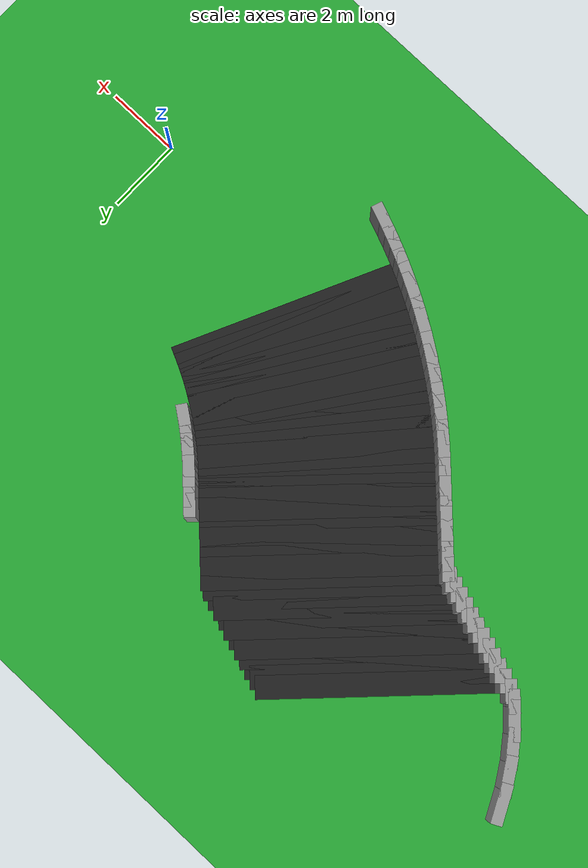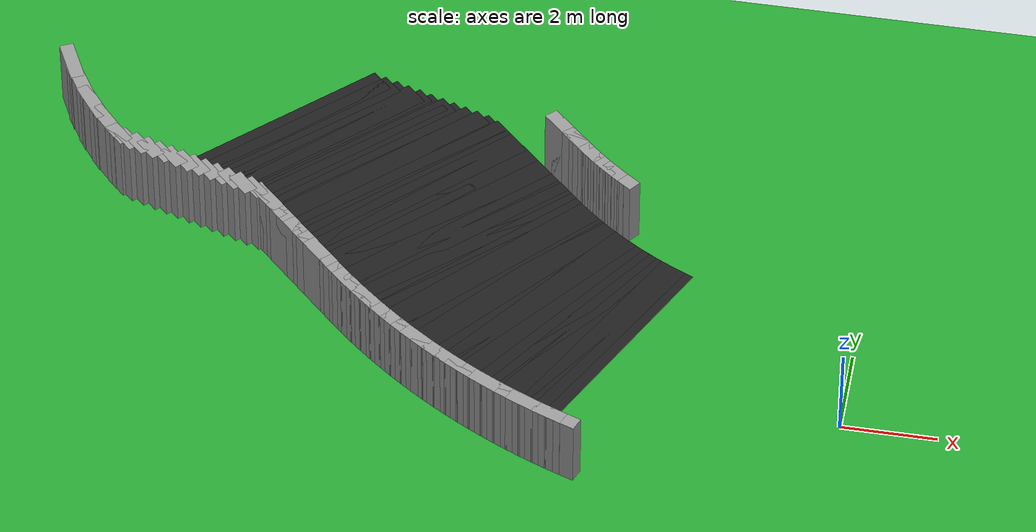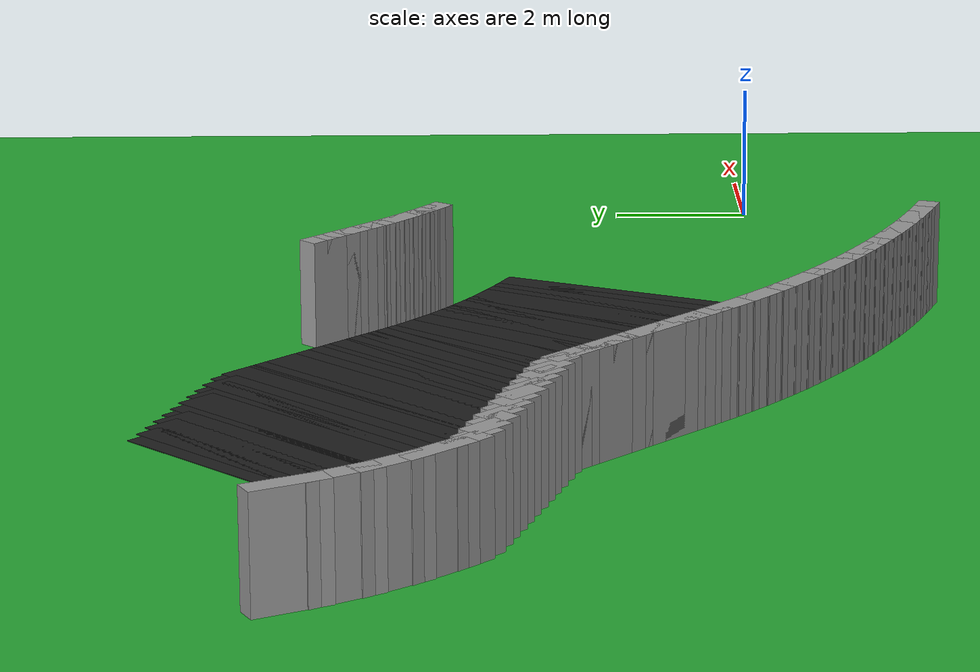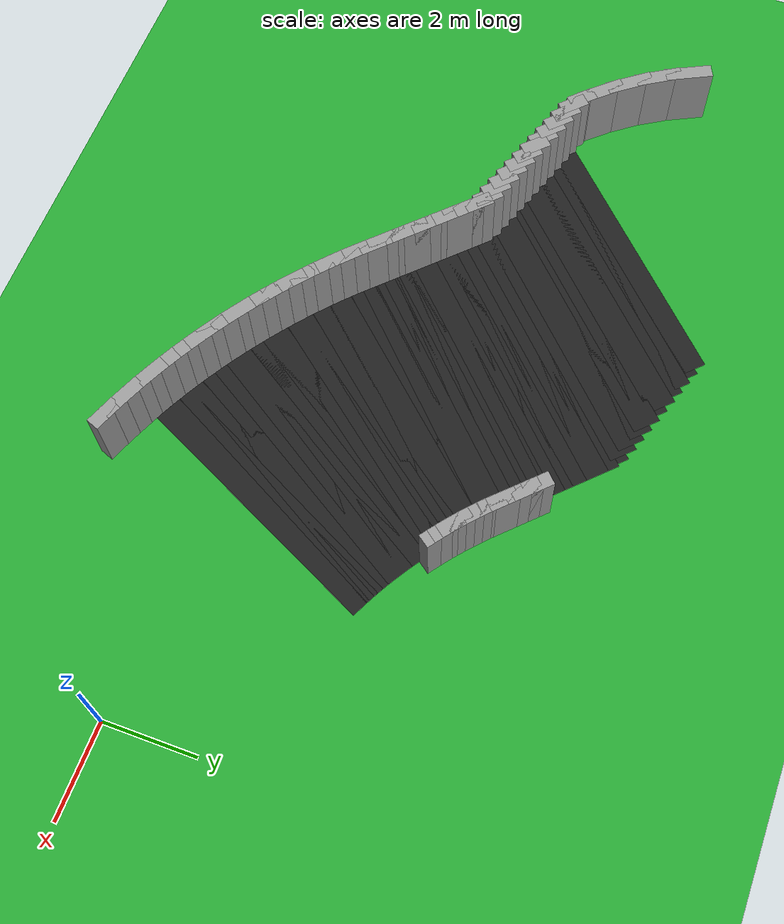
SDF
<sdf version="1.6">
 <world name="obstacle_asymturn">
  <include><uri>model://sun</uri></include>
  <model name="ground_plane">
   <static>true</static>
   <link name="link">
    <collision name="collision">
     <surface><friction><ode><mu>100</mu><mu2>50</mu2></ode></friction></surface>
     <geometry><plane><normal>0 0 1</normal><size>120 120</size></plane></geometry>
    </collision>
    <visual name="visual">
     <geometry><plane><normal>0 0 1</normal><size>120 120</size></plane></geometry>
     <material>
      <script><uri>file://media/materials/scripts/gazebo.material</uri><name>Gazebo/Green</name></script>
     </material>
    </visual>
   </link>
  </model>
  <model name="curbR_424">
   <static>true</static>
   <pose>-17.391 6.394 0.750 0 0 -1.10880</pose>
   <link name="link">
    <collision name="collision"><geometry><box><size>1.039 0.300 1.500</size></box></geometry></collision>
    <visual name="visual">
     <geometry><box><size>1.039 0.300 1.500</size></box></geometry>
     <material>
      <script><uri>file://media/materials/scripts/gazebo.material</uri><name>Gazebo/Grey</name></script>
     </material>
    </visual>
   </link>
  </model>
  <model name="curbR_425">
   <static>true</static>
   <pose>-17.061 5.802 0.750 0 0 -1.01640</pose>
   <link name="link">
    <collision name="collision"><geometry><box><size>1.039 0.300 1.500</size></box></geometry></collision>
    <visual name="visual">
     <geometry><box><size>1.039 0.300 1.500</size></box></geometry>
     <material>
      <script><uri>file://media/materials/scripts/gazebo.material</uri><name>Gazebo/Grey</name></script>
     </material>
    </visual>
   </link>
  </model>
  <model name="curbR_426">
   <static>true</static>
   <pose>-16.678 5.242 0.750 0 0 -0.92400</pose>
   <link name="link">
    <collision name="collision"><geometry><box><size>1.039 0.300 1.500</size></box></geometry></collision>
    <visual name="visual">
     <geometry><box><size>1.039 0.300 1.500</size></box></geometry>
     <material>
      <script><uri>file://media/materials/scripts/gazebo.material</uri><name>Gazebo/Grey</name></script>
     </material>
    </visual>
   </link>
  </model>
  <model name="curbR_427">
   <static>true</static>
   <pose>-16.245 4.720 0.750 0 0 -0.83160</pose>
   <link name="link">
    <collision name="collision"><geometry><box><size>1.039 0.300 1.500</size></box></geometry></collision>
    <visual name="visual">
     <geometry><box><size>1.039 0.300 1.500</size></box></geometry>
     <material>
      <script><uri>file://media/materials/scripts/gazebo.material</uri><name>Gazebo/Grey</name></script>
     </material>
    </visual>
   </link>
  </model>
  <model name="curbR_428">
   <static>true</static>
   <pose>-15.928 4.381 0.750 0 0 -0.78540</pose>
   <link name="link">
    <collision name="collision"><geometry><box><size>0.610 0.300 1.500</size></box></geometry></collision>
    <visual name="visual">
     <geometry><box><size>0.610 0.300 1.500</size></box></geometry>
     <material>
      <script><uri>file://media/materials/scripts/gazebo.material</uri><name>Gazebo/Grey</name></script>
     </material>
    </visual>
   </link>
  </model>
  <model name="curbR_429">
   <static>true</static>
   <pose>-15.704 4.251 0.750 0 0 -0.78540</pose>
   <link name="link">
    <collision name="collision"><geometry><box><size>0.610 0.300 1.500</size></box></geometry></collision>
    <visual name="visual">
     <geometry><box><size>0.610 0.300 1.500</size></box></geometry>
     <material>
      <script><uri>file://media/materials/scripts/gazebo.material</uri><name>Gazebo/Grey</name></script>
     </material>
    </visual>
   </link>
  </model>
  <model name="asphalt_430">
   <static>true</static>
   <pose>-13.212 6.390 0.005 0 0 -0.78540</pose>
   <link name="link">
    <visual name="visual">
     <geometry><box><size>0.610 6.000 0.010</size></box></geometry>
     <material>
      <script><uri>file://media/materials/scripts/gazebo.material</uri><name>Gazebo/Black</name></script>
     </material>
    </visual>
   </link>
  </model>
  <model name="curbR_430">
   <static>true</static>
   <pose>-15.439 4.162 0.750 0 0 -0.78540</pose>
   <link name="link">
    <collision name="collision"><geometry><box><size>0.610 0.300 1.500</size></box></geometry></collision>
    <visual name="visual">
     <geometry><box><size>0.610 0.300 1.500</size></box></geometry>
     <material>
      <script><uri>file://media/materials/scripts/gazebo.material</uri><name>Gazebo/Grey</name></script>
     </material>
    </visual>
   </link>
  </model>
  <model name="asphalt_431">
   <static>true</static>
   <pose>-12.947 6.301 0.005 0 0 -0.78540</pose>
   <link name="link">
    <visual name="visual">
     <geometry><box><size>0.610 6.000 0.010</size></box></geometry>
     <material>
      <script><uri>file://media/materials/scripts/gazebo.material</uri><name>Gazebo/Black</name></script>
     </material>
    </visual>
   </link>
  </model>
  <model name="curbR_431">
   <static>true</static>
   <pose>-15.174 4.074 0.750 0 0 -0.78540</pose>
   <link name="link">
    <collision name="collision"><geometry><box><size>0.610 0.300 1.500</size></box></geometry></collision>
    <visual name="visual">
     <geometry><box><size>0.610 0.300 1.500</size></box></geometry>
     <material>
      <script><uri>file://media/materials/scripts/gazebo.material</uri><name>Gazebo/Grey</name></script>
     </material>
    </visual>
   </link>
  </model>
  <model name="asphalt_432">
   <static>true</static>
   <pose>-12.682 6.213 0.005 0 0 -0.78540</pose>
   <link name="link">
    <visual name="visual">
     <geometry><box><size>0.610 6.000 0.010</size></box></geometry>
     <material>
      <script><uri>file://media/materials/scripts/gazebo.material</uri><name>Gazebo/Black</name></script>
     </material>
    </visual>
   </link>
  </model>
  <model name="curbR_432">
   <static>true</static>
   <pose>-14.909 3.986 0.750 0 0 -0.78540</pose>
   <link name="link">
    <collision name="collision"><geometry><box><size>0.610 0.300 1.500</size></box></geometry></collision>
    <visual name="visual">
     <geometry><box><size>0.610 0.300 1.500</size></box></geometry>
     <material>
      <script><uri>file://media/materials/scripts/gazebo.material</uri><name>Gazebo/Grey</name></script>
     </material>
    </visual>
   </link>
  </model>
  <model name="asphalt_433">
   <static>true</static>
   <pose>-12.416 6.125 0.005 0 0 -0.78540</pose>
   <link name="link">
    <visual name="visual">
     <geometry><box><size>0.610 6.000 0.010</size></box></geometry>
     <material>
      <script><uri>file://media/materials/scripts/gazebo.material</uri><name>Gazebo/Black</name></script>
     </material>
    </visual>
   </link>
  </model>
  <model name="curbR_433">
   <static>true</static>
   <pose>-14.644 3.897 0.750 0 0 -0.78540</pose>
   <link name="link">
    <collision name="collision"><geometry><box><size>0.610 0.300 1.500</size></box></geometry></collision>
    <visual name="visual">
     <geometry><box><size>0.610 0.300 1.500</size></box></geometry>
     <material>
      <script><uri>file://media/materials/scripts/gazebo.material</uri><name>Gazebo/Grey</name></script>
     </material>
    </visual>
   </link>
  </model>
  <model name="asphalt_434">
   <static>true</static>
   <pose>-12.151 6.036 0.005 0 0 -0.78540</pose>
   <link name="link">
    <visual name="visual">
     <geometry><box><size>0.610 6.000 0.010</size></box></geometry>
     <material>
      <script><uri>file://media/materials/scripts/gazebo.material</uri><name>Gazebo/Black</name></script>
     </material>
    </visual>
   </link>
  </model>
  <model name="curbR_434">
   <static>true</static>
   <pose>-14.379 3.809 0.750 0 0 -0.78540</pose>
   <link name="link">
    <collision name="collision"><geometry><box><size>0.610 0.300 1.500</size></box></geometry></collision>
    <visual name="visual">
     <geometry><box><size>0.610 0.300 1.500</size></box></geometry>
     <material>
      <script><uri>file://media/materials/scripts/gazebo.material</uri><name>Gazebo/Grey</name></script>
     </material>
    </visual>
   </link>
  </model>
  <model name="asphalt_435">
   <static>true</static>
   <pose>-11.886 5.948 0.005 0 0 -0.78540</pose>
   <link name="link">
    <visual name="visual">
     <geometry><box><size>0.610 6.000 0.010</size></box></geometry>
     <material>
      <script><uri>file://media/materials/scripts/gazebo.material</uri><name>Gazebo/Black</name></script>
     </material>
    </visual>
   </link>
  </model>
  <model name="curbR_435">
   <static>true</static>
   <pose>-14.113 3.720 0.750 0 0 -0.78540</pose>
   <link name="link">
    <collision name="collision"><geometry><box><size>0.610 0.300 1.500</size></box></geometry></collision>
    <visual name="visual">
     <geometry><box><size>0.610 0.300 1.500</size></box></geometry>
     <material>
      <script><uri>file://media/materials/scripts/gazebo.material</uri><name>Gazebo/Grey</name></script>
     </material>
    </visual>
   </link>
  </model>
  <model name="asphalt_436">
   <static>true</static>
   <pose>-11.621 5.859 0.005 0 0 -0.78540</pose>
   <link name="link">
    <visual name="visual">
     <geometry><box><size>0.610 6.000 0.010</size></box></geometry>
     <material>
      <script><uri>file://media/materials/scripts/gazebo.material</uri><name>Gazebo/Black</name></script>
     </material>
    </visual>
   </link>
  </model>
  <model name="curbR_436">
   <static>true</static>
   <pose>-13.848 3.632 0.750 0 0 -0.78540</pose>
   <link name="link">
    <collision name="collision"><geometry><box><size>0.610 0.300 1.500</size></box></geometry></collision>
    <visual name="visual">
     <geometry><box><size>0.610 0.300 1.500</size></box></geometry>
     <material>
      <script><uri>file://media/materials/scripts/gazebo.material</uri><name>Gazebo/Grey</name></script>
     </material>
    </visual>
   </link>
  </model>
  <model name="asphalt_437">
   <static>true</static>
   <pose>-11.356 5.771 0.005 0 0 -0.78540</pose>
   <link name="link">
    <visual name="visual">
     <geometry><box><size>0.610 6.000 0.010</size></box></geometry>
     <material>
      <script><uri>file://media/materials/scripts/gazebo.material</uri><name>Gazebo/Black</name></script>
     </material>
    </visual>
   </link>
  </model>
  <model name="curbR_437">
   <static>true</static>
   <pose>-13.583 3.544 0.750 0 0 -0.78540</pose>
   <link name="link">
    <collision name="collision"><geometry><box><size>0.610 0.300 1.500</size></box></geometry></collision>
    <visual name="visual">
     <geometry><box><size>0.610 0.300 1.500</size></box></geometry>
     <material>
      <script><uri>file://media/materials/scripts/gazebo.material</uri><name>Gazebo/Grey</name></script>
     </material>
    </visual>
   </link>
  </model>
  <model name="asphalt_438">
   <static>true</static>
   <pose>-11.091 5.683 0.005 0 0 -0.78540</pose>
   <link name="link">
    <visual name="visual">
     <geometry><box><size>0.610 6.000 0.010</size></box></geometry>
     <material>
      <script><uri>file://media/materials/scripts/gazebo.material</uri><name>Gazebo/Black</name></script>
     </material>
    </visual>
   </link>
  </model>
  <model name="curbR_438">
   <static>true</static>
   <pose>-13.318 3.455 0.750 0 0 -0.78540</pose>
   <link name="link">
    <collision name="collision"><geometry><box><size>0.610 0.300 1.500</size></box></geometry></collision>
    <visual name="visual">
     <geometry><box><size>0.610 0.300 1.500</size></box></geometry>
     <material>
      <script><uri>file://media/materials/scripts/gazebo.material</uri><name>Gazebo/Grey</name></script>
     </material>
    </visual>
   </link>
  </model>
  <model name="asphalt_439">
   <static>true</static>
   <pose>-10.825 5.594 0.005 0 0 -0.78540</pose>
   <link name="link">
    <visual name="visual">
     <geometry><box><size>0.610 6.000 0.010</size></box></geometry>
     <material>
      <script><uri>file://media/materials/scripts/gazebo.material</uri><name>Gazebo/Black</name></script>
     </material>
    </visual>
   </link>
  </model>
  <model name="curbR_439">
   <static>true</static>
   <pose>-13.053 3.367 0.750 0 0 -0.78540</pose>
   <link name="link">
    <collision name="collision"><geometry><box><size>0.610 0.300 1.500</size></box></geometry></collision>
    <visual name="visual">
     <geometry><box><size>0.610 0.300 1.500</size></box></geometry>
     <material>
      <script><uri>file://media/materials/scripts/gazebo.material</uri><name>Gazebo/Grey</name></script>
     </material>
    </visual>
   </link>
  </model>
  <model name="asphalt_440">
   <static>true</static>
   <pose>-10.560 5.506 0.005 0 0 -0.78540</pose>
   <link name="link">
    <visual name="visual">
     <geometry><box><size>0.610 6.000 0.010</size></box></geometry>
     <material>
      <script><uri>file://media/materials/scripts/gazebo.material</uri><name>Gazebo/Black</name></script>
     </material>
    </visual>
   </link>
  </model>
  <model name="curbR_440">
   <static>true</static>
   <pose>-12.788 3.278 0.750 0 0 -0.78540</pose>
   <link name="link">
    <collision name="collision"><geometry><box><size>0.610 0.300 1.500</size></box></geometry></collision>
    <visual name="visual">
     <geometry><box><size>0.610 0.300 1.500</size></box></geometry>
     <material>
      <script><uri>file://media/materials/scripts/gazebo.material</uri><name>Gazebo/Grey</name></script>
     </material>
    </visual>
   </link>
  </model>
  <model name="asphalt_441">
   <static>true</static>
   <pose>-10.342 5.371 0.005 0 0 -0.78540</pose>
   <link name="link">
    <visual name="visual">
     <geometry><box><size>0.610 6.000 0.010</size></box></geometry>
     <material>
      <script><uri>file://media/materials/scripts/gazebo.material</uri><name>Gazebo/Black</name></script>
     </material>
    </visual>
   </link>
  </model>
  <model name="curbR_441">
   <static>true</static>
   <pose>-12.569 3.144 0.750 0 0 -0.78540</pose>
   <link name="link">
    <collision name="collision"><geometry><box><size>0.610 0.300 1.500</size></box></geometry></collision>
    <visual name="visual">
     <geometry><box><size>0.610 0.300 1.500</size></box></geometry>
     <material>
      <script><uri>file://media/materials/scripts/gazebo.material</uri><name>Gazebo/Grey</name></script>
     </material>
    </visual>
   </link>
  </model>
  <model name="asphalt_442">
   <static>true</static>
   <pose>-10.165 5.194 0.005 0 0 -0.78540</pose>
   <link name="link">
    <visual name="visual">
     <geometry><box><size>0.610 6.000 0.010</size></box></geometry>
     <material>
      <script><uri>file://media/materials/scripts/gazebo.material</uri><name>Gazebo/Black</name></script>
     </material>
    </visual>
   </link>
  </model>
  <model name="curbR_442">
   <static>true</static>
   <pose>-12.392 2.967 0.750 0 0 -0.78540</pose>
   <link name="link">
    <collision name="collision"><geometry><box><size>0.610 0.300 1.500</size></box></geometry></collision>
    <visual name="visual">
     <geometry><box><size>0.610 0.300 1.500</size></box></geometry>
     <material>
      <script><uri>file://media/materials/scripts/gazebo.material</uri><name>Gazebo/Grey</name></script>
     </material>
    </visual>
   </link>
  </model>
  <model name="asphalt_443">
   <static>true</static>
   <pose>-9.988 5.017 0.005 0 0 -0.78540</pose>
   <link name="link">
    <visual name="visual">
     <geometry><box><size>0.610 6.000 0.010</size></box></geometry>
     <material>
      <script><uri>file://media/materials/scripts/gazebo.material</uri><name>Gazebo/Black</name></script>
     </material>
    </visual>
   </link>
  </model>
  <model name="curbR_443">
   <static>true</static>
   <pose>-12.215 2.790 0.750 0 0 -0.78540</pose>
   <link name="link">
    <collision name="collision"><geometry><box><size>0.610 0.300 1.500</size></box></geometry></collision>
    <visual name="visual">
     <geometry><box><size>0.610 0.300 1.500</size></box></geometry>
     <material>
      <script><uri>file://media/materials/scripts/gazebo.material</uri><name>Gazebo/Grey</name></script>
     </material>
    </visual>
   </link>
  </model>
  <model name="asphalt_444">
   <static>true</static>
   <pose>-9.811 4.841 0.005 0 0 -0.78540</pose>
   <link name="link">
    <visual name="visual">
     <geometry><box><size>0.610 6.000 0.010</size></box></geometry>
     <material>
      <script><uri>file://media/materials/scripts/gazebo.material</uri><name>Gazebo/Black</name></script>
     </material>
    </visual>
   </link>
  </model>
  <model name="curbR_444">
   <static>true</static>
   <pose>-12.039 2.613 0.750 0 0 -0.78540</pose>
   <link name="link">
    <collision name="collision"><geometry><box><size>0.610 0.300 1.500</size></box></geometry></collision>
    <visual name="visual">
     <geometry><box><size>0.610 0.300 1.500</size></box></geometry>
     <material>
      <script><uri>file://media/materials/scripts/gazebo.material</uri><name>Gazebo/Grey</name></script>
     </material>
    </visual>
   </link>
  </model>
  <model name="asphalt_445">
   <static>true</static>
   <pose>-9.634 4.664 0.005 0 0 -0.78540</pose>
   <link name="link">
    <visual name="visual">
     <geometry><box><size>0.610 6.000 0.010</size></box></geometry>
     <material>
      <script><uri>file://media/materials/scripts/gazebo.material</uri><name>Gazebo/Black</name></script>
     </material>
    </visual>
   </link>
  </model>
  <model name="curbR_445">
   <static>true</static>
   <pose>-11.862 2.436 0.750 0 0 -0.78540</pose>
   <link name="link">
    <collision name="collision"><geometry><box><size>0.610 0.300 1.500</size></box></geometry></collision>
    <visual name="visual">
     <geometry><box><size>0.610 0.300 1.500</size></box></geometry>
     <material>
      <script><uri>file://media/materials/scripts/gazebo.material</uri><name>Gazebo/Grey</name></script>
     </material>
    </visual>
   </link>
  </model>
  <model name="asphalt_446">
   <static>true</static>
   <pose>-9.458 4.487 0.005 0 0 -0.78540</pose>
   <link name="link">
    <visual name="visual">
     <geometry><box><size>0.610 6.000 0.010</size></box></geometry>
     <material>
      <script><uri>file://media/materials/scripts/gazebo.material</uri><name>Gazebo/Black</name></script>
     </material>
    </visual>
   </link>
  </model>
  <model name="curbR_446">
   <static>true</static>
   <pose>-11.685 2.260 0.750 0 0 -0.78540</pose>
   <link name="link">
    <collision name="collision"><geometry><box><size>0.610 0.300 1.500</size></box></geometry></collision>
    <visual name="visual">
     <geometry><box><size>0.610 0.300 1.500</size></box></geometry>
     <material>
      <script><uri>file://media/materials/scripts/gazebo.material</uri><name>Gazebo/Grey</name></script>
     </material>
    </visual>
   </link>
  </model>
  <model name="asphalt_447">
   <static>true</static>
   <pose>-9.281 4.310 0.005 0 0 -0.78540</pose>
   <link name="link">
    <visual name="visual">
     <geometry><box><size>0.610 6.000 0.010</size></box></geometry>
     <material>
      <script><uri>file://media/materials/scripts/gazebo.material</uri><name>Gazebo/Black</name></script>
     </material>
    </visual>
   </link>
  </model>
  <model name="curbR_447">
   <static>true</static>
   <pose>-11.508 2.083 0.750 0 0 -0.78540</pose>
   <link name="link">
    <collision name="collision"><geometry><box><size>0.610 0.300 1.500</size></box></geometry></collision>
    <visual name="visual">
     <geometry><box><size>0.610 0.300 1.500</size></box></geometry>
     <material>
      <script><uri>file://media/materials/scripts/gazebo.material</uri><name>Gazebo/Grey</name></script>
     </material>
    </visual>
   </link>
  </model>
  <model name="asphalt_448">
   <static>true</static>
   <pose>-9.104 4.133 0.005 0 0 -0.78540</pose>
   <link name="link">
    <visual name="visual">
     <geometry><box><size>0.610 6.000 0.010</size></box></geometry>
     <material>
      <script><uri>file://media/materials/scripts/gazebo.material</uri><name>Gazebo/Black</name></script>
     </material>
    </visual>
   </link>
  </model>
  <model name="curbL_448">
   <static>true</static>
   <pose>-6.877 6.361 0.750 0 0 -0.78540</pose>
   <link name="link">
    <collision name="collision"><geometry><box><size>0.610 0.300 1.500</size></box></geometry></collision>
    <visual name="visual">
     <geometry><box><size>0.610 0.300 1.500</size></box></geometry>
     <material>
      <script><uri>file://media/materials/scripts/gazebo.material</uri><name>Gazebo/Grey</name></script>
     </material>
    </visual>
   </link>
  </model>
  <model name="curbR_448">
   <static>true</static>
   <pose>-11.332 1.906 0.750 0 0 -0.78540</pose>
   <link name="link">
    <collision name="collision"><geometry><box><size>0.610 0.300 1.500</size></box></geometry></collision>
    <visual name="visual">
     <geometry><box><size>0.610 0.300 1.500</size></box></geometry>
     <material>
      <script><uri>file://media/materials/scripts/gazebo.material</uri><name>Gazebo/Grey</name></script>
     </material>
    </visual>
   </link>
  </model>
  <model name="asphalt_449">
   <static>true</static>
   <pose>-8.927 3.957 0.005 0 0 -0.78540</pose>
   <link name="link">
    <visual name="visual">
     <geometry><box><size>0.610 6.000 0.010</size></box></geometry>
     <material>
      <script><uri>file://media/materials/scripts/gazebo.material</uri><name>Gazebo/Black</name></script>
     </material>
    </visual>
   </link>
  </model>
  <model name="curbL_449">
   <static>true</static>
   <pose>-6.700 6.184 0.750 0 0 -0.78540</pose>
   <link name="link">
    <collision name="collision"><geometry><box><size>0.610 0.300 1.500</size></box></geometry></collision>
    <visual name="visual">
     <geometry><box><size>0.610 0.300 1.500</size></box></geometry>
     <material>
      <script><uri>file://media/materials/scripts/gazebo.material</uri><name>Gazebo/Grey</name></script>
     </material>
    </visual>
   </link>
  </model>
  <model name="curbR_449">
   <static>true</static>
   <pose>-11.155 1.729 0.750 0 0 -0.78540</pose>
   <link name="link">
    <collision name="collision"><geometry><box><size>0.610 0.300 1.500</size></box></geometry></collision>
    <visual name="visual">
     <geometry><box><size>0.610 0.300 1.500</size></box></geometry>
     <material>
      <script><uri>file://media/materials/scripts/gazebo.material</uri><name>Gazebo/Grey</name></script>
     </material>
    </visual>
   </link>
  </model>
  <model name="asphalt_450">
   <static>true</static>
   <pose>-8.751 3.780 0.005 0 0 -0.78540</pose>
   <link name="link">
    <visual name="visual">
     <geometry><box><size>0.610 6.000 0.010</size></box></geometry>
     <material>
      <script><uri>file://media/materials/scripts/gazebo.material</uri><name>Gazebo/Black</name></script>
     </material>
    </visual>
   </link>
  </model>
  <model name="curbL_450">
   <static>true</static>
   <pose>-6.523 6.007 0.750 0 0 -0.78540</pose>
   <link name="link">
    <collision name="collision"><geometry><box><size>0.610 0.300 1.500</size></box></geometry></collision>
    <visual name="visual">
     <geometry><box><size>0.610 0.300 1.500</size></box></geometry>
     <material>
      <script><uri>file://media/materials/scripts/gazebo.material</uri><name>Gazebo/Grey</name></script>
     </material>
    </visual>
   </link>
  </model>
  <model name="curbR_450">
   <static>true</static>
   <pose>-10.978 1.553 0.750 0 0 -0.78540</pose>
   <link name="link">
    <collision name="collision"><geometry><box><size>0.610 0.300 1.500</size></box></geometry></collision>
    <visual name="visual">
     <geometry><box><size>0.610 0.300 1.500</size></box></geometry>
     <material>
      <script><uri>file://media/materials/scripts/gazebo.material</uri><name>Gazebo/Grey</name></script>
     </material>
    </visual>
   </link>
  </model>
  <model name="asphalt_451">
   <static>true</static>
   <pose>-8.574 3.603 0.005 0 0 -0.78540</pose>
   <link name="link">
    <visual name="visual">
     <geometry><box><size>0.610 6.000 0.010</size></box></geometry>
     <material>
      <script><uri>file://media/materials/scripts/gazebo.material</uri><name>Gazebo/Black</name></script>
     </material>
    </visual>
   </link>
  </model>
  <model name="curbL_451">
   <static>true</static>
   <pose>-6.346 5.831 0.750 0 0 -0.78540</pose>
   <link name="link">
    <collision name="collision"><geometry><box><size>0.610 0.300 1.500</size></box></geometry></collision>
    <visual name="visual">
     <geometry><box><size>0.610 0.300 1.500</size></box></geometry>
     <material>
      <script><uri>file://media/materials/scripts/gazebo.material</uri><name>Gazebo/Grey</name></script>
     </material>
    </visual>
   </link>
  </model>
  <model name="curbR_451">
   <static>true</static>
   <pose>-10.801 1.376 0.750 0 0 -0.78540</pose>
   <link name="link">
    <collision name="collision"><geometry><box><size>0.610 0.300 1.500</size></box></geometry></collision>
    <visual name="visual">
     <geometry><box><size>0.610 0.300 1.500</size></box></geometry>
     <material>
      <script><uri>file://media/materials/scripts/gazebo.material</uri><name>Gazebo/Grey</name></script>
     </material>
    </visual>
   </link>
  </model>
  <model name="asphalt_452">
   <static>true</static>
   <pose>-8.397 3.428 0.005 0 0 -0.77506</pose>
   <link name="link">
    <visual name="visual">
     <geometry><box><size>0.608 6.000 0.010</size></box></geometry>
     <material>
      <script><uri>file://media/materials/scripts/gazebo.material</uri><name>Gazebo/Black</name></script>
     </material>
    </visual>
   </link>
  </model>
  <model name="curbL_452">
   <static>true</static>
   <pose>-6.193 5.678 0.750 0 0 -0.77506</pose>
   <link name="link">
    <collision name="collision"><geometry><box><size>0.543 0.300 1.500</size></box></geometry></collision>
    <visual name="visual">
     <geometry><box><size>0.543 0.300 1.500</size></box></geometry>
     <material>
      <script><uri>file://media/materials/scripts/gazebo.material</uri><name>Gazebo/Grey</name></script>
     </material>
    </visual>
   </link>
  </model>
  <model name="curbR_452">
   <static>true</static>
   <pose>-10.601 1.178 0.750 0 0 -0.77506</pose>
   <link name="link">
    <collision name="collision"><geometry><box><size>0.673 0.300 1.500</size></box></geometry></collision>
    <visual name="visual">
     <geometry><box><size>0.673 0.300 1.500</size></box></geometry>
     <material>
      <script><uri>file://media/materials/scripts/gazebo.material</uri><name>Gazebo/Grey</name></script>
     </material>
    </visual>
   </link>
  </model>
  <model name="asphalt_453">
   <static>true</static>
   <pose>-8.218 3.256 0.005 0 0 -0.75440</pose>
   <link name="link">
    <visual name="visual">
     <geometry><box><size>0.608 6.000 0.010</size></box></geometry>
     <material>
      <script><uri>file://media/materials/scripts/gazebo.material</uri><name>Gazebo/Black</name></script>
     </material>
    </visual>
   </link>
  </model>
  <model name="curbL_453">
   <static>true</static>
   <pose>-6.061 5.552 0.750 0 0 -0.75440</pose>
   <link name="link">
    <collision name="collision"><geometry><box><size>0.543 0.300 1.500</size></box></geometry></collision>
    <visual name="visual">
     <geometry><box><size>0.543 0.300 1.500</size></box></geometry>
     <material>
      <script><uri>file://media/materials/scripts/gazebo.material</uri><name>Gazebo/Grey</name></script>
     </material>
    </visual>
   </link>
  </model>
  <model name="curbR_453">
   <static>true</static>
   <pose>-10.375 0.961 0.750 0 0 -0.75440</pose>
   <link name="link">
    <collision name="collision"><geometry><box><size>0.673 0.300 1.500</size></box></geometry></collision>
    <visual name="visual">
     <geometry><box><size>0.673 0.300 1.500</size></box></geometry>
     <material>
      <script><uri>file://media/materials/scripts/gazebo.material</uri><name>Gazebo/Grey</name></script>
     </material>
    </visual>
   </link>
  </model>
  <model name="asphalt_454">
   <static>true</static>
   <pose>-8.035 3.088 0.005 0 0 -0.73373</pose>
   <link name="link">
    <visual name="visual">
     <geometry><box><size>0.608 6.000 0.010</size></box></geometry>
     <material>
      <script><uri>file://media/materials/scripts/gazebo.material</uri><name>Gazebo/Black</name></script>
     </material>
    </visual>
   </link>
  </model>
  <model name="curbL_454">
   <static>true</static>
   <pose>-5.926 5.428 0.750 0 0 -0.73373</pose>
   <link name="link">
    <collision name="collision"><geometry><box><size>0.543 0.300 1.500</size></box></geometry></collision>
    <visual name="visual">
     <geometry><box><size>0.543 0.300 1.500</size></box></geometry>
     <material>
      <script><uri>file://media/materials/scripts/gazebo.material</uri><name>Gazebo/Grey</name></script>
     </material>
    </visual>
   </link>
  </model>
  <model name="curbR_454">
   <static>true</static>
   <pose>-10.145 0.749 0.750 0 0 -0.73373</pose>
   <link name="link">
    <collision name="collision"><geometry><box><size>0.673 0.300 1.500</size></box></geometry></collision>
    <visual name="visual">
     <geometry><box><size>0.673 0.300 1.500</size></box></geometry>
     <material>
      <script><uri>file://media/materials/scripts/gazebo.material</uri><name>Gazebo/Grey</name></script>
     </material>
    </visual>
   </link>
  </model>
  <model name="asphalt_455">
   <static>true</static>
   <pose>-7.850 2.924 0.005 0 0 -0.71306</pose>
   <link name="link">
    <visual name="visual">
     <geometry><box><size>0.608 6.000 0.010</size></box></geometry>
     <material>
      <script><uri>file://media/materials/scripts/gazebo.material</uri><name>Gazebo/Black</name></script>
     </material>
    </visual>
   </link>
  </model>
  <model name="curbL_455">
   <static>true</static>
   <pose>-5.789 5.307 0.750 0 0 -0.71306</pose>
   <link name="link">
    <collision name="collision"><geometry><box><size>0.543 0.300 1.500</size></box></geometry></collision>
    <visual name="visual">
     <geometry><box><size>0.543 0.300 1.500</size></box></geometry>
     <material>
      <script><uri>file://media/materials/scripts/gazebo.material</uri><name>Gazebo/Grey</name></script>
     </material>
    </visual>
   </link>
  </model>
  <model name="curbR_455">
   <static>true</static>
   <pose>-9.910 0.542 0.750 0 0 -0.71306</pose>
   <link name="link">
    <collision name="collision"><geometry><box><size>0.673 0.300 1.500</size></box></geometry></collision>
    <visual name="visual">
     <geometry><box><size>0.673 0.300 1.500</size></box></geometry>
     <material>
      <script><uri>file://media/materials/scripts/gazebo.material</uri><name>Gazebo/Grey</name></script>
     </material>
    </visual>
   </link>
  </model>
  <model name="asphalt_456">
   <static>true</static>
   <pose>-7.660 2.764 0.005 0 0 -0.69239</pose>
   <link name="link">
    <visual name="visual">
     <geometry><box><size>0.608 6.000 0.010</size></box></geometry>
     <material>
      <script><uri>file://media/materials/scripts/gazebo.material</uri><name>Gazebo/Black</name></script>
     </material>
    </visual>
   </link>
  </model>
  <model name="curbL_456">
   <static>true</static>
   <pose>-5.649 5.188 0.750 0 0 -0.69239</pose>
   <link name="link">
    <collision name="collision"><geometry><box><size>0.543 0.300 1.500</size></box></geometry></collision>
    <visual name="visual">
     <geometry><box><size>0.543 0.300 1.500</size></box></geometry>
     <material>
      <script><uri>file://media/materials/scripts/gazebo.material</uri><name>Gazebo/Grey</name></script>
     </material>
    </visual>
   </link>
  </model>
  <model name="curbR_456">
   <static>true</static>
   <pose>-9.671 0.339 0.750 0 0 -0.69239</pose>
   <link name="link">
    <collision name="collision"><geometry><box><size>0.673 0.300 1.500</size></box></geometry></collision>
    <visual name="visual">
     <geometry><box><size>0.673 0.300 1.500</size></box></geometry>
     <material>
      <script><uri>file://media/materials/scripts/gazebo.material</uri><name>Gazebo/Grey</name></script>
     </material>
    </visual>
   </link>
  </model>
  <model name="asphalt_457">
   <static>true</static>
   <pose>-7.468 2.608 0.005 0 0 -0.67172</pose>
   <link name="link">
    <visual name="visual">
     <geometry><box><size>0.608 6.000 0.010</size></box></geometry>
     <material>
      <script><uri>file://media/materials/scripts/gazebo.material</uri><name>Gazebo/Black</name></script>
     </material>
    </visual>
   </link>
  </model>
  <model name="curbL_457">
   <static>true</static>
   <pose>-5.508 5.073 0.750 0 0 -0.67172</pose>
   <link name="link">
    <collision name="collision"><geometry><box><size>0.543 0.300 1.500</size></box></geometry></collision>
    <visual name="visual">
     <geometry><box><size>0.543 0.300 1.500</size></box></geometry>
     <material>
      <script><uri>file://media/materials/scripts/gazebo.material</uri><name>Gazebo/Grey</name></script>
     </material>
    </visual>
   </link>
  </model>
  <model name="curbR_457">
   <static>true</static>
   <pose>-9.428 0.142 0.750 0 0 -0.67172</pose>
   <link name="link">
    <collision name="collision"><geometry><box><size>0.673 0.300 1.500</size></box></geometry></collision>
    <visual name="visual">
     <geometry><box><size>0.673 0.300 1.500</size></box></geometry>
     <material>
      <script><uri>file://media/materials/scripts/gazebo.material</uri><name>Gazebo/Grey</name></script>
     </material>
    </visual>
   </link>
  </model>
  <model name="asphalt_458">
   <static>true</static>
   <pose>-7.272 2.455 0.005 0 0 -0.65105</pose>
   <link name="link">
    <visual name="visual">
     <geometry><box><size>0.608 6.000 0.010</size></box></geometry>
     <material>
      <script><uri>file://media/materials/scripts/gazebo.material</uri><name>Gazebo/Black</name></script>
     </material>
    </visual>
   </link>
  </model>
  <model name="curbL_458">
   <static>true</static>
   <pose>-5.363 4.961 0.750 0 0 -0.65105</pose>
   <link name="link">
    <collision name="collision"><geometry><box><size>0.543 0.300 1.500</size></box></geometry></collision>
    <visual name="visual">
     <geometry><box><size>0.543 0.300 1.500</size></box></geometry>
     <material>
      <script><uri>file://media/materials/scripts/gazebo.material</uri><name>Gazebo/Grey</name></script>
     </material>
    </visual>
   </link>
  </model>
  <model name="curbR_458">
   <static>true</static>
   <pose>-9.181 -0.050 0.750 0 0 -0.65105</pose>
   <link name="link">
    <collision name="collision"><geometry><box><size>0.673 0.300 1.500</size></box></geometry></collision>
    <visual name="visual">
     <geometry><box><size>0.673 0.300 1.500</size></box></geometry>
     <material>
      <script><uri>file://media/materials/scripts/gazebo.material</uri><name>Gazebo/Grey</name></script>
     </material>
    </visual>
   </link>
  </model>
  <model name="asphalt_459">
   <static>true</static>
   <pose>-7.073 2.307 0.005 0 0 -0.63039</pose>
   <link name="link">
    <visual name="visual">
     <geometry><box><size>0.608 6.000 0.010</size></box></geometry>
     <material>
      <script><uri>file://media/materials/scripts/gazebo.material</uri><name>Gazebo/Black</name></script>
     </material>
    </visual>
   </link>
  </model>
  <model name="curbL_459">
   <static>true</static>
   <pose>-5.217 4.851 0.750 0 0 -0.63039</pose>
   <link name="link">
    <collision name="collision"><geometry><box><size>0.543 0.300 1.500</size></box></geometry></collision>
    <visual name="visual">
     <geometry><box><size>0.543 0.300 1.500</size></box></geometry>
     <material>
      <script><uri>file://media/materials/scripts/gazebo.material</uri><name>Gazebo/Grey</name></script>
     </material>
    </visual>
   </link>
  </model>
  <model name="curbR_459">
   <static>true</static>
   <pose>-8.930 -0.237 0.750 0 0 -0.63039</pose>
   <link name="link">
    <collision name="collision"><geometry><box><size>0.673 0.300 1.500</size></box></geometry></collision>
    <visual name="visual">
     <geometry><box><size>0.673 0.300 1.500</size></box></geometry>
     <material>
      <script><uri>file://media/materials/scripts/gazebo.material</uri><name>Gazebo/Grey</name></script>
     </material>
    </visual>
   </link>
  </model>
  <model name="asphalt_460">
   <static>true</static>
   <pose>-6.871 2.163 0.005 0 0 -0.60972</pose>
   <link name="link">
    <visual name="visual">
     <geometry><box><size>0.608 6.000 0.010</size></box></geometry>
     <material>
      <script><uri>file://media/materials/scripts/gazebo.material</uri><name>Gazebo/Black</name></script>
     </material>
    </visual>
   </link>
  </model>
  <model name="curbR_460">
   <static>true</static>
   <pose>-8.675 -0.419 0.750 0 0 -0.60972</pose>
   <link name="link">
    <collision name="collision"><geometry><box><size>0.673 0.300 1.500</size></box></geometry></collision>
    <visual name="visual">
     <geometry><box><size>0.673 0.300 1.500</size></box></geometry>
     <material>
      <script><uri>file://media/materials/scripts/gazebo.material</uri><name>Gazebo/Grey</name></script>
     </material>
    </visual>
   </link>
  </model>
  <model name="asphalt_461">
   <static>true</static>
   <pose>-6.667 2.023 0.005 0 0 -0.58905</pose>
   <link name="link">
    <visual name="visual">
     <geometry><box><size>0.608 6.000 0.010</size></box></geometry>
     <material>
      <script><uri>file://media/materials/scripts/gazebo.material</uri><name>Gazebo/Black</name></script>
     </material>
    </visual>
   </link>
  </model>
  <model name="curbR_461">
   <static>true</static>
   <pose>-8.417 -0.596 0.750 0 0 -0.58905</pose>
   <link name="link">
    <collision name="collision"><geometry><box><size>0.673 0.300 1.500</size></box></geometry></collision>
    <visual name="visual">
     <geometry><box><size>0.673 0.300 1.500</size></box></geometry>
     <material>
      <script><uri>file://media/materials/scripts/gazebo.material</uri><name>Gazebo/Grey</name></script>
     </material>
    </visual>
   </link>
  </model>
  <model name="asphalt_462">
   <static>true</static>
   <pose>-6.459 1.887 0.005 0 0 -0.56838</pose>
   <link name="link">
    <visual name="visual">
     <geometry><box><size>0.608 6.000 0.010</size></box></geometry>
     <material>
      <script><uri>file://media/materials/scripts/gazebo.material</uri><name>Gazebo/Black</name></script>
     </material>
    </visual>
   </link>
  </model>
  <model name="curbR_462">
   <static>true</static>
   <pose>-8.154 -0.767 0.750 0 0 -0.56838</pose>
   <link name="link">
    <collision name="collision"><geometry><box><size>0.673 0.300 1.500</size></box></geometry></collision>
    <visual name="visual">
     <geometry><box><size>0.673 0.300 1.500</size></box></geometry>
     <material>
      <script><uri>file://media/materials/scripts/gazebo.material</uri><name>Gazebo/Grey</name></script>
     </material>
    </visual>
   </link>
  </model>
  <model name="asphalt_463">
   <static>true</static>
   <pose>-6.249 1.756 0.005 0 0 -0.54771</pose>
   <link name="link">
    <visual name="visual">
     <geometry><box><size>0.608 6.000 0.010</size></box></geometry>
     <material>
      <script><uri>file://media/materials/scripts/gazebo.material</uri><name>Gazebo/Black</name></script>
     </material>
    </visual>
   </link>
  </model>
  <model name="curbR_463">
   <static>true</static>
   <pose>-7.889 -0.933 0.750 0 0 -0.54771</pose>
   <link name="link">
    <collision name="collision"><geometry><box><size>0.673 0.300 1.500</size></box></geometry></collision>
    <visual name="visual">
     <geometry><box><size>0.673 0.300 1.500</size></box></geometry>
     <material>
      <script><uri>file://media/materials/scripts/gazebo.material</uri><name>Gazebo/Grey</name></script>
     </material>
    </visual>
   </link>
  </model>
  <model name="asphalt_464">
   <static>true</static>
   <pose>-6.036 1.629 0.005 0 0 -0.52704</pose>
   <link name="link">
    <visual name="visual">
     <geometry><box><size>0.608 6.000 0.010</size></box></geometry>
     <material>
      <script><uri>file://media/materials/scripts/gazebo.material</uri><name>Gazebo/Black</name></script>
     </material>
    </visual>
   </link>
  </model>
  <model name="curbR_464">
   <static>true</static>
   <pose>-7.620 -1.093 0.750 0 0 -0.52704</pose>
   <link name="link">
    <collision name="collision"><geometry><box><size>0.673 0.300 1.500</size></box></geometry></collision>
    <visual name="visual">
     <geometry><box><size>0.673 0.300 1.500</size></box></geometry>
     <material>
      <script><uri>file://media/materials/scripts/gazebo.material</uri><name>Gazebo/Grey</name></script>
     </material>
    </visual>
   </link>
  </model>
  <model name="asphalt_465">
   <static>true</static>
   <pose>-5.820 1.506 0.005 0 0 -0.50638</pose>
   <link name="link">
    <visual name="visual">
     <geometry><box><size>0.608 6.000 0.010</size></box></geometry>
     <material>
      <script><uri>file://media/materials/scripts/gazebo.material</uri><name>Gazebo/Black</name></script>
     </material>
    </visual>
   </link>
  </model>
  <model name="curbR_465">
   <static>true</static>
   <pose>-7.348 -1.248 0.750 0 0 -0.50638</pose>
   <link name="link">
    <collision name="collision"><geometry><box><size>0.673 0.300 1.500</size></box></geometry></collision>
    <visual name="visual">
     <geometry><box><size>0.673 0.300 1.500</size></box></geometry>
     <material>
      <script><uri>file://media/materials/scripts/gazebo.material</uri><name>Gazebo/Grey</name></script>
     </material>
    </visual>
   </link>
  </model>
  <model name="asphalt_466">
   <static>true</static>
   <pose>-5.602 1.388 0.005 0 0 -0.48571</pose>
   <link name="link">
    <visual name="visual">
     <geometry><box><size>0.608 6.000 0.010</size></box></geometry>
     <material>
      <script><uri>file://media/materials/scripts/gazebo.material</uri><name>Gazebo/Black</name></script>
     </material>
    </visual>
   </link>
  </model>
  <model name="curbR_466">
   <static>true</static>
   <pose>-7.072 -1.397 0.750 0 0 -0.48571</pose>
   <link name="link">
    <collision name="collision"><geometry><box><size>0.673 0.300 1.500</size></box></geometry></collision>
    <visual name="visual">
     <geometry><box><size>0.673 0.300 1.500</size></box></geometry>
     <material>
      <script><uri>file://media/materials/scripts/gazebo.material</uri><name>Gazebo/Grey</name></script>
     </material>
    </visual>
   </link>
  </model>
  <model name="asphalt_467">
   <static>true</static>
   <pose>-5.381 1.275 0.005 0 0 -0.46504</pose>
   <link name="link">
    <visual name="visual">
     <geometry><box><size>0.608 6.000 0.010</size></box></geometry>
     <material>
      <script><uri>file://media/materials/scripts/gazebo.material</uri><name>Gazebo/Black</name></script>
     </material>
    </visual>
   </link>
  </model>
  <model name="curbR_467">
   <static>true</static>
   <pose>-6.794 -1.540 0.750 0 0 -0.46504</pose>
   <link name="link">
    <collision name="collision"><geometry><box><size>0.673 0.300 1.500</size></box></geometry></collision>
    <visual name="visual">
     <geometry><box><size>0.673 0.300 1.500</size></box></geometry>
     <material>
      <script><uri>file://media/materials/scripts/gazebo.material</uri><name>Gazebo/Grey</name></script>
     </material>
    </visual>
   </link>
  </model>
  <model name="asphalt_468">
   <static>true</static>
   <pose>-5.158 1.166 0.005 0 0 -0.44437</pose>
   <link name="link">
    <visual name="visual">
     <geometry><box><size>0.608 6.000 0.010</size></box></geometry>
     <material>
      <script><uri>file://media/materials/scripts/gazebo.material</uri><name>Gazebo/Black</name></script>
     </material>
    </visual>
   </link>
  </model>
  <model name="curbR_468">
   <static>true</static>
   <pose>-6.513 -1.678 0.750 0 0 -0.44437</pose>
   <link name="link">
    <collision name="collision"><geometry><box><size>0.673 0.300 1.500</size></box></geometry></collision>
    <visual name="visual">
     <geometry><box><size>0.673 0.300 1.500</size></box></geometry>
     <material>
      <script><uri>file://media/materials/scripts/gazebo.material</uri><name>Gazebo/Grey</name></script>
     </material>
    </visual>
   </link>
  </model>
  <model name="curbR_469">
   <static>true</static>
   <pose>-6.228 -1.810 0.750 0 0 -0.42370</pose>
   <link name="link">
    <collision name="collision"><geometry><box><size>0.673 0.300 1.500</size></box></geometry></collision>
    <visual name="visual">
     <geometry><box><size>0.673 0.300 1.500</size></box></geometry>
     <material>
      <script><uri>file://media/materials/scripts/gazebo.material</uri><name>Gazebo/Grey</name></script>
     </material>
    </visual>
   </link>
  </model>
  <model name="curbR_470">
   <static>true</static>
   <pose>-5.942 -1.935 0.750 0 0 -0.40303</pose>
   <link name="link">
    <collision name="collision"><geometry><box><size>0.673 0.300 1.500</size></box></geometry></collision>
    <visual name="visual">
     <geometry><box><size>0.673 0.300 1.500</size></box></geometry>
     <material>
      <script><uri>file://media/materials/scripts/gazebo.material</uri><name>Gazebo/Grey</name></script>
     </material>
    </visual>
   </link>
  </model>
  <model name="curbR_471">
   <static>true</static>
   <pose>-5.652 -2.055 0.750 0 0 -0.38236</pose>
   <link name="link">
    <collision name="collision"><geometry><box><size>0.673 0.300 1.500</size></box></geometry></collision>
    <visual name="visual">
     <geometry><box><size>0.673 0.300 1.500</size></box></geometry>
     <material>
      <script><uri>file://media/materials/scripts/gazebo.material</uri><name>Gazebo/Grey</name></script>
     </material>
    </visual>
   </link>
  </model>
  <model name="curbR_472">
   <static>true</static>
   <pose>-5.361 -2.169 0.750 0 0 -0.36170</pose>
   <link name="link">
    <collision name="collision"><geometry><box><size>0.673 0.300 1.500</size></box></geometry></collision>
    <visual name="visual">
     <geometry><box><size>0.673 0.300 1.500</size></box></geometry>
     <material>
      <script><uri>file://media/materials/scripts/gazebo.material</uri><name>Gazebo/Grey</name></script>
     </material>
    </visual>
   </link>
  </model>
 </world>
</sdf>
